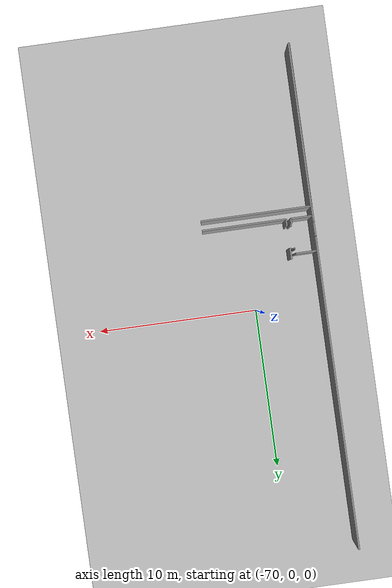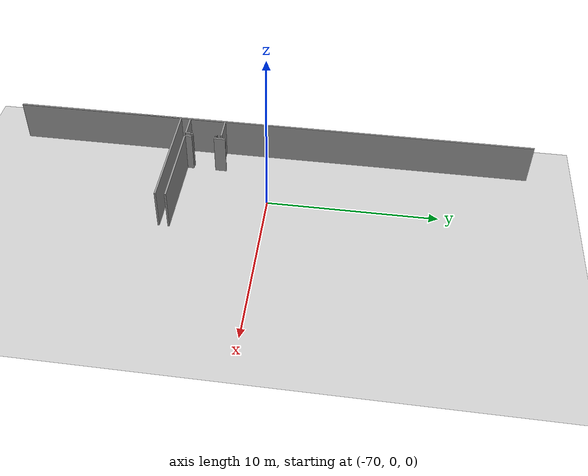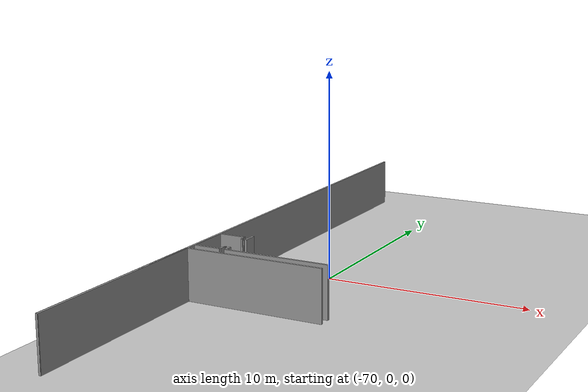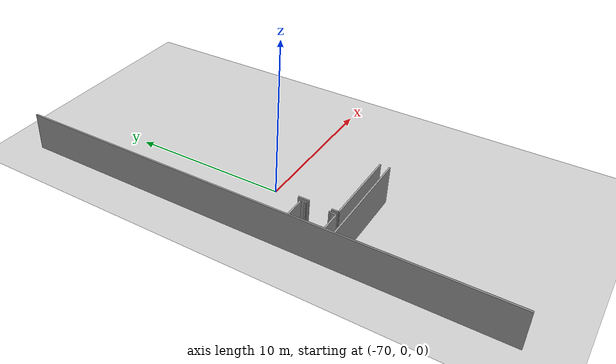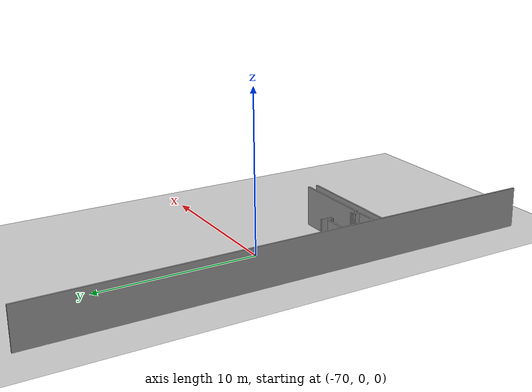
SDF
<sdf version="1.6">
 <world name="default">
  <model name="ground_plane">
   <static>1</static>
   <link name="link">
    <collision name="collision">
     <geometry><plane><normal>0 0 1</normal><size>100 100</size></plane></geometry>
     <surface><friction><ode><mu>100</mu><mu2>50</mu2></ode></friction></surface>
    </collision>
    <visual name="visual">
     <cast_shadows>0</cast_shadows>
     <geometry><plane><normal>0 0 1</normal><size>100 100</size></plane></geometry>
     <material>
      <script><uri>file://media/materials/scripts/gazebo.material</uri><name>Gazebo/Grey</name></script>
     </material>
    </visual>
   </link>
  </model>
  <model name="50055637">
   <static>1</static>
   <link name="Wall_0">
    <collision name="Wall_0_Collision">
     <geometry><box><size>10.0771707856 0.1 2.5</size></box></geometry>
     <pose>5.03858539281 0 1.25 0 0 0</pose>
    </collision>
    <visual name="Wall_0_Visual">
     <pose>5.03858539281 0 1.25 0 0 0</pose>
     <geometry><box><size>10.0771707856 0.1 2.5</size></box></geometry>
     <material>
      <script><uri>file://media/materials/scripts/gazebo.material</uri><name>Gazebo/Grey</name></script>
      <ambient>1 1 1 1</ambient>
     </material>
    </visual>
    <pose>0.0217221470627 -31.2967867736 0 0 0 1.57079632679</pose>
   </link>
   <link name="Wall_1">
    <collision name="Wall_1_Collision">
     <geometry><box><size>6.82672459239 0.1 2.5</size></box></geometry>
     <pose>3.4133622962 0 1.25 0 0 0</pose>
    </collision>
    <visual name="Wall_1_Visual">
     <pose>3.4133622962 0 1.25 0 0 0</pose>
     <geometry><box><size>6.82672459239 0.1 2.5</size></box></geometry>
     <material>
      <script><uri>file://media/materials/scripts/gazebo.material</uri><name>Gazebo/Grey</name></script>
      <ambient>1 1 1 1</ambient>
     </material>
    </visual>
    <pose>0.0217221470627 -21.219615988 0 0 0 0.0</pose>
   </link>
   <link name="Wall_17">
    <collision name="Wall_17_Collision">
     <geometry><box><size>2.1567170341 0.1 2.5</size></box></geometry>
     <pose>1.07835851705 0 1.25 0 0 0</pose>
    </collision>
    <visual name="Wall_17_Visual">
     <pose>1.07835851705 0 1.25 0 0 0</pose>
     <geometry><box><size>2.1567170341 0.1 2.5</size></box></geometry>
     <material>
      <script><uri>file://media/materials/scripts/gazebo.material</uri><name>Gazebo/Grey</name></script>
      <ambient>1 1 1 1</ambient>
     </material>
    </visual>
    <pose>0.0284547423512 -20.6284179036 0 0 0 1.57079632679</pose>
   </link>
   <link name="Wall_18">
    <collision name="Wall_18_Collision">
     <geometry><box><size>1.32073194743 0.1 2.5</size></box></geometry>
     <pose>0.660365973717 0 1.25 0 0 0</pose>
    </collision>
    <visual name="Wall_18_Visual">
     <pose>0.660365973717 0 1.25 0 0 0</pose>
     <geometry><box><size>1.32073194743 0.1 2.5</size></box></geometry>
     <material>
      <script><uri>file://media/materials/scripts/gazebo.material</uri><name>Gazebo/Grey</name></script>
      <ambient>1 1 1 1</ambient>
     </material>
    </visual>
    <pose>0.0284547423512 -18.4717008695 0 0 0 0.0</pose>
   </link>
   <link name="Wall_20">
    <collision name="Wall_20_Collision">
     <geometry><box><size>0.0569094847024 0.1 2.5</size></box></geometry>
     <pose>0.0284547423512 0 1.25 0 0 0</pose>
    </collision>
    <visual name="Wall_20_Visual">
     <pose>0.0284547423512 0 1.25 0 0 0</pose>
     <geometry><box><size>0.0569094847024 0.1 2.5</size></box></geometry>
     <material>
      <script><uri>file://media/materials/scripts/gazebo.material</uri><name>Gazebo/Grey</name></script>
      <ambient>1 1 1 1</ambient>
     </material>
    </visual>
    <pose>1.34918668979 -18.7471021258 0 0 0 0.0</pose>
   </link>
   <link name="Wall_21">
    <collision name="Wall_21_Collision">
     <geometry><box><size>0.0901913708453 0.1 2.5</size></box></geometry>
     <pose>0.0450956854227 0 1.25 0 0 0</pose>
    </collision>
    <visual name="Wall_21_Visual">
     <pose>0.0450956854227 0 1.25 0 0 0</pose>
     <geometry><box><size>0.0901913708453 0.1 2.5</size></box></geometry>
     <material>
      <script><uri>file://media/materials/scripts/gazebo.material</uri><name>Gazebo/Grey</name></script>
      <ambient>1 1 1 1</ambient>
     </material>
    </visual>
    <pose>1.40609617449 -18.7471021258 0 0 0 -1.57079632679</pose>
   </link>
   <link name="Wall_22">
    <collision name="Wall_22_Collision">
     <geometry><box><size>0.12245701619 0.1 2.5</size></box></geometry>
     <pose>0.061228508095 0 1.25 0 0 0</pose>
    </collision>
    <visual name="Wall_22_Visual">
     <pose>0.061228508095 0 1.25 0 0 0</pose>
     <geometry><box><size>0.12245701619 0.1 2.5</size></box></geometry>
     <material>
      <script><uri>file://media/materials/scripts/gazebo.material</uri><name>Gazebo/Grey</name></script>
      <ambient>1 1 1 1</ambient>
     </material>
    </visual>
    <pose>1.40609617449 -20.1772069892 0 0 0 -1.57079632679</pose>
   </link>
   <link name="Wall_23">
    <collision name="Wall_23_Collision">
     <geometry><box><size>0.0459848961211 0.1 2.5</size></box></geometry>
     <pose>0.0229924480606 0 1.25 0 0 0</pose>
    </collision>
    <visual name="Wall_23_Visual">
     <pose>0.0229924480606 0 1.25 0 0 0</pose>
     <geometry><box><size>0.0459848961211 0.1 2.5</size></box></geometry>
     <material>
      <script><uri>file://media/materials/scripts/gazebo.material</uri><name>Gazebo/Grey</name></script>
      <ambient>1 1 1 1</ambient>
     </material>
    </visual>
    <pose>1.40609617449 -20.2996640054 0 0 0 3.14159265359</pose>
   </link>
   <link name="Wall_24">
    <collision name="Wall_24_Collision">
     <geometry><box><size>0.332818861429 0.1 2.5</size></box></geometry>
     <pose>0.166409430715 0 1.25 0 0 0</pose>
    </collision>
    <visual name="Wall_24_Visual">
     <pose>0.166409430715 0 1.25 0 0 0</pose>
     <geometry><box><size>0.332818861429 0.1 2.5</size></box></geometry>
     <material>
      <script><uri>file://media/materials/scripts/gazebo.material</uri><name>Gazebo/Grey</name></script>
      <ambient>1 1 1 1</ambient>
     </material>
    </visual>
    <pose>1.36011127837 -20.2996640054 0 0 0 -1.57079632679</pose>
   </link>
   <link name="Wall_25">
    <collision name="Wall_25_Collision">
     <geometry><box><size>1.33166274028 0.1 2.5</size></box></geometry>
     <pose>0.665831370138 0 1.25 0 0 0</pose>
    </collision>
    <visual name="Wall_25_Visual">
     <pose>0.665831370138 0 1.25 0 0 0</pose>
     <geometry><box><size>1.33166274028 0.1 2.5</size></box></geometry>
     <material>
      <script><uri>file://media/materials/scripts/gazebo.material</uri><name>Gazebo/Grey</name></script>
      <ambient>1 1 1 1</ambient>
     </material>
    </visual>
    <pose>1.36011127837 -20.6324828668 0 0 0 3.13854010178</pose>
   </link>
   <link name="Wall_60">
    <collision name="Wall_60_Collision">
     <geometry><box><size>5.20289882688 0.1 2.5</size></box></geometry>
     <pose>2.60144941344 0 1.25 0 0 0</pose>
    </collision>
    <visual name="Wall_60_Visual">
     <pose>2.60144941344 0 1.25 0 0 0</pose>
     <geometry><box><size>5.20289882688 0.1 2.5</size></box></geometry>
     <material>
      <script><uri>file://media/materials/scripts/gazebo.material</uri><name>Gazebo/Grey</name></script>
      <ambient>1 1 1 1</ambient>
     </material>
    </visual>
    <pose>6.84781158896 -20.6366748601 0 0 0 3.14159265359</pose>
   </link>
   <link name="Wall_61">
    <collision name="Wall_61_Collision">
     <geometry><box><size>0.434061850956 0.1 2.5</size></box></geometry>
     <pose>0.217030925478 0 1.25 0 0 0</pose>
    </collision>
    <visual name="Wall_61_Visual">
     <pose>0.217030925478 0 1.25 0 0 0</pose>
     <geometry><box><size>0.434061850956 0.1 2.5</size></box></geometry>
     <material>
      <script><uri>file://media/materials/scripts/gazebo.material</uri><name>Gazebo/Grey</name></script>
      <ambient>1 1 1 1</ambient>
     </material>
    </visual>
    <pose>1.64491276208 -20.6366748601 0 0 0 1.57079632679</pose>
   </link>
   <link name="Wall_62">
    <collision name="Wall_62_Collision">
     <geometry><box><size>0.681897575631 0.1 2.5</size></box></geometry>
     <pose>0.340948787815 0 1.25 0 0 0</pose>
    </collision>
    <visual name="Wall_62_Visual">
     <pose>0.340948787815 0 1.25 0 0 0</pose>
     <geometry><box><size>0.681897575631 0.1 2.5</size></box></geometry>
     <material>
      <script><uri>file://media/materials/scripts/gazebo.material</uri><name>Gazebo/Grey</name></script>
      <ambient>1 1 1 1</ambient>
     </material>
    </visual>
    <pose>1.64491276208 -18.8609210953 0 0 0 1.57079632679</pose>
   </link>
   <link name="Wall_109">
    <collision name="Wall_109_Collision">
     <geometry><box><size>31.3113952351 0.1 2.5</size></box></geometry>
     <pose>15.6556976176 0 1.25 0 0 0</pose>
    </collision>
    <visual name="Wall_109_Visual">
     <pose>15.6556976176 0 1.25 0 0 0</pose>
     <geometry><box><size>31.3113952351 0.1 2.5</size></box></geometry>
     <material>
      <script><uri>file://media/materials/scripts/gazebo.material</uri><name>Gazebo/Grey</name></script>
      <ambient>1 1 1 1</ambient>
     </material>
    </visual>
    <pose>0.0 -31.3113952351 0 0 0 1.57079632679</pose>
   </link>
   <pose>-74.15 15.3113952351 0 0 0 0</pose>
  </model>
 </world>
</sdf>
